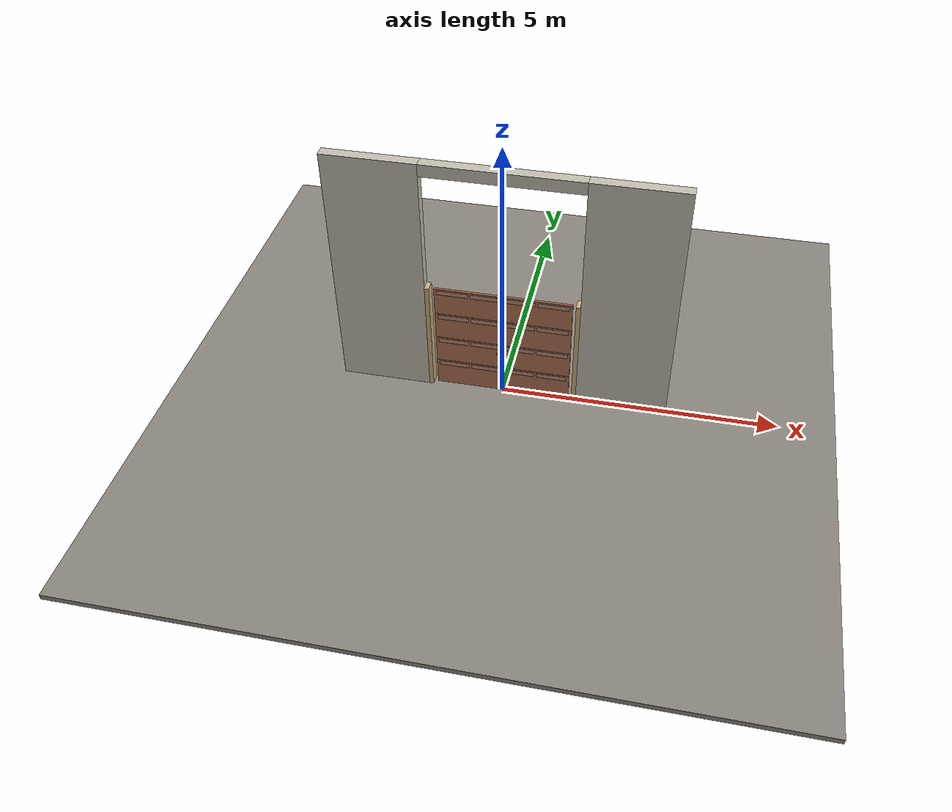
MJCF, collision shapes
<?xml version="1.0" ?>
<mujoco model="db0433_garage_sectional_minimal">
  <compiler angle="radian" meshdir="../../hardware" texturedir="../../textures" autolimits="true" inertiafromgeom="false"/>
  <option timestep="0.002" integrator="implicitfast" cone="elliptic" impratio="10" noslip_iterations="3">
    <flag multiccd="enable"/>
  </option>
  <size memory="16M"/>
  <default>
    <geom condim="4" solref="0.005 1" solimp="0.95 0.99 0.001"/>
    <joint solreflimit="0.005 1" solimplimit="0.95 0.99 0.001"/>
    <tendon solreflimit="0.005 1"/>
    <equality solref="0.002 1"/>
  </default>
  <visual>
    <headlight ambient="0.4 0.4 0.4" diffuse="0.7 0.7 0.7" specular="0.2 0.2 0.2"/>
    <quality shadowsize="4096"/>
    <map znear="0.01" zfar="60"/>
  </visual>
  <asset>
    <mesh name="pull_bdc5e965ab" file="pull_bdc5e965ab.obj"/>
    <material name="mat_floor" rgba="0.55 0.53 0.5 1" specular="0.2" shininess="0.15" reflectance="0"/>
    <material name="mat_wall" rgba="0.78 0.76 0.7 1" specular="0.2" shininess="0.1" reflectance="0"/>
    <material name="mat_frame" rgba="0.82 0.7 0.5 1" specular="0.2" shininess="0.45" reflectance="0"/>
    <material name="mat_track" rgba="0.65 0.66 0.68 1" specular="0.74" shininess="0.5" reflectance="0.36"/>
    <material name="mat_section_0" rgba="0.7 0.45 0.32 1" specular="0.2" shininess="0.4" reflectance="0"/>
    <material name="mat_glass" rgba="0.85 0.92 0.95 0.25" specular="0.2" shininess="0.95" reflectance="0.1"/>
    <material name="mat_section_1" rgba="0.7 0.45 0.32 1" specular="0.2" shininess="0.4" reflectance="0"/>
    <material name="mat_hinge_line" rgba="0.2 0.2 0.2 1" specular="0.2" shininess="0.3" reflectance="0"/>
    <material name="mat_section_2" rgba="0.7 0.45 0.32 1" specular="0.2" shininess="0.4" reflectance="0"/>
    <material name="mat_section_3" rgba="0.7 0.45 0.32 1" specular="0.2" shininess="0.4" reflectance="0"/>
    <material name="mat_spring" rgba="0.55 0.56 0.58 1" specular="0.8" shininess="0.55" reflectance="0.4"/>
    <material name="mat_opener" rgba="0.05 0.05 0.05 1" specular="0.38" shininess="0.3" reflectance="0.12"/>
    <material name="mat_op_black_matte_metal" rgba="0.05 0.05 0.05 1" specular="0.38" shininess="0.3" reflectance="0.12"/>
    <material name="mat_slidelock" rgba="0.65 0.66 0.68 1" specular="0.74" shininess="0.5" reflectance="0.36"/>
    <texture name="skybox" type="skybox" builtin="gradient" rgb1="0.6 0.7 0.85" rgb2="0.9 0.92 0.95" width="256" height="256"/>
  </asset>
  <worldbody>
    <light name="sun" pos="1.5 -2.5 4" dir="-0.3 0.5 -0.8" directional="true" diffuse="0.8 0.8 0.8" specular="0.3 0.3 0.3" castshadow="true"/>
    <light name="fill" pos="-1.5 2.5 3" dir="0.3 -0.5 -0.7" directional="true" diffuse="0.35 0.35 0.4" castshadow="false"/>
    <camera name="robot_view" pos="0 -2.959375 1.918625" xyaxes="1 0 0 0 0.26963 0.962964" fovy="52"/>
    <camera name="far_view" pos="0 2.959375 1.918625" xyaxes="-1 0 0 0 -0.26963 0.962964" fovy="52"/>
    <camera name="iso" pos="2.249125 -2.485875 2.392125" xyaxes="0.741536 0.670913 0 -0.242917 0.268487 0.932151" fovy="46"/>
    <camera name="detail_handle" pos="0.25 -1.1725 1.25" xyaxes="0.975133 0.221621 0 -0.065674 0.288965 0.955084" fovy="38"/>
    <geom name="floor" type="box" size="6 6 0.05" pos="0 0 -0.05" material="mat_floor" group="0" contype="1" conaffinity="1" friction="0.8 0.005 0.0001" density="2400"/>
    <geom name="wall_left" type="box" size="0.8175 0.1 2.305" pos="-2.1825 0 2.305" material="mat_wall" group="0" contype="1" conaffinity="1" friction="0.6 0.005 0.0001" density="800"/>
    <geom name="wall_right" type="box" size="0.8175 0.1 2.305" pos="2.1825 0 2.305" material="mat_wall" group="0" contype="1" conaffinity="1" friction="0.6 0.005 0.0001" density="800"/>
    <geom name="wall_header" type="box" size="1.365 0.1 0.11" pos="0 0 4.5" material="mat_wall" group="0" contype="1" conaffinity="1" friction="0.6 0.005 0.0001" density="800"/>
    <geom name="garage_jamb_l" type="box" size="0.04 0.1 1.09" pos="-1.325 0 1.09" material="mat_frame" group="0" contype="1" conaffinity="1" friction="0.6 0.005 0.0001" density="400"/>
    <geom name="garage_jamb_r" type="box" size="0.04 0.1 1.09" pos="1.325 0 1.09" material="mat_frame" group="0" contype="1" conaffinity="1" friction="0.6 0.005 0.0001" density="400"/>
    <site name="approach_point" pos="0 -2 0" quat="1 0 0 0" size="0.05" rgba="0.2 0.9 0.2 0.5" group="4"/>
    <site name="goal_point" pos="0 2 0" quat="1 0 0 0" size="0.05" rgba="0.2 0.9 0.2 0.5" group="4"/>
    <site name="door_plane_center" pos="0 0 1.09" quat="1 0 0 0" size="0.02" rgba="0.2 0.9 0.2 0.5" group="4"/>
    <body name="door" pos="0 0 0">
      <inertial pos="0 0 1.072825" mass="79.93599" quat="0.707107 0.707107 0 0" diaginertia="29.880737702 39.167918265 69.013212332"/>
      <joint name="door_slide" type="slide" axis="0 0 1" limited="true" range="0 2.08" damping="6.004164" frictionloss="31.41395" stiffness="96.313627" springref="6.933333" armature="0.5"/>
      <geom name="section_0_slab" type="box" size="1.22 0.0225 0.26625" pos="0 0 0.27625" material="mat_section_0" group="0" contype="1" conaffinity="1" friction="0.35 0.005 0.0001" density="1"/>
      <geom name="section_0_glass_0" type="box" size="0.2775 0.0233 0.0426" pos="-0.8925 0 0.46795" material="mat_glass" group="1" contype="0" conaffinity="0" density="1"/>
      <geom name="section_0_glass_1" type="box" size="0.2775 0.0233 0.0426" pos="-0.2975 0 0.46795" material="mat_glass" group="1" contype="0" conaffinity="0" density="1"/>
      <geom name="section_0_glass_2" type="box" size="0.2775 0.0233 0.0426" pos="0.2975 0 0.46795" material="mat_glass" group="1" contype="0" conaffinity="0" density="1"/>
      <geom name="section_0_glass_3" type="box" size="0.2775 0.0233 0.0426" pos="0.8925 0 0.46795" material="mat_glass" group="1" contype="0" conaffinity="0" density="1"/>
      <geom name="section_1_slab" type="box" size="1.22 0.0225 0.26625" pos="0 0 0.80875" material="mat_section_1" group="0" contype="1" conaffinity="1" friction="0.35 0.005 0.0001" density="1"/>
      <geom name="section_1_glass_0" type="box" size="0.2775 0.0233 0.0426" pos="-0.8925 0 1.00045" material="mat_glass" group="1" contype="0" conaffinity="0" density="1"/>
      <geom name="section_1_glass_1" type="box" size="0.2775 0.0233 0.0426" pos="-0.2975 0 1.00045" material="mat_glass" group="1" contype="0" conaffinity="0" density="1"/>
      <geom name="section_1_glass_2" type="box" size="0.2775 0.0233 0.0426" pos="0.2975 0 1.00045" material="mat_glass" group="1" contype="0" conaffinity="0" density="1"/>
      <geom name="section_1_glass_3" type="box" size="0.2775 0.0233 0.0426" pos="0.8925 0 1.00045" material="mat_glass" group="1" contype="0" conaffinity="0" density="1"/>
      <geom name="section_2_slab" type="box" size="1.22 0.0225 0.26625" pos="0 0 1.34125" material="mat_section_2" group="0" contype="1" conaffinity="1" friction="0.35 0.005 0.0001" density="1"/>
      <geom name="section_2_glass_0" type="box" size="0.2775 0.0233 0.0426" pos="-0.8925 0 1.53295" material="mat_glass" group="1" contype="0" conaffinity="0" density="1"/>
      <geom name="section_2_glass_1" type="box" size="0.2775 0.0233 0.0426" pos="-0.2975 0 1.53295" material="mat_glass" group="1" contype="0" conaffinity="0" density="1"/>
      <geom name="section_2_glass_2" type="box" size="0.2775 0.0233 0.0426" pos="0.2975 0 1.53295" material="mat_glass" group="1" contype="0" conaffinity="0" density="1"/>
      <geom name="section_2_glass_3" type="box" size="0.2775 0.0233 0.0426" pos="0.8925 0 1.53295" material="mat_glass" group="1" contype="0" conaffinity="0" density="1"/>
      <geom name="section_3_slab" type="box" size="1.22 0.0225 0.26625" pos="0 0 1.87375" material="mat_section_3" group="0" contype="1" conaffinity="1" friction="0.35 0.005 0.0001" density="1"/>
      <geom name="section_3_glass_0" type="box" size="0.2775 0.0233 0.0426" pos="-0.8925 0 2.06545" material="mat_glass" group="1" contype="0" conaffinity="0" density="1"/>
      <geom name="section_3_glass_1" type="box" size="0.2775 0.0233 0.0426" pos="-0.2975 0 2.06545" material="mat_glass" group="1" contype="0" conaffinity="0" density="1"/>
      <geom name="section_3_glass_2" type="box" size="0.2775 0.0233 0.0426" pos="0.2975 0 2.06545" material="mat_glass" group="1" contype="0" conaffinity="0" density="1"/>
      <geom name="section_3_glass_3" type="box" size="0.2775 0.0233 0.0426" pos="0.8925 0 2.06545" material="mat_glass" group="1" contype="0" conaffinity="0" density="1"/>
      <geom name="lift_handle_n" type="mesh" mesh="pull_bdc5e965ab" pos="0 -0.0225 0.9" quat="0.707107 0.707107 0 0" material="mat_op_black_matte_metal" group="1" contype="0" conaffinity="0" density="3000"/>
      <geom name="lift_handle_col_n" type="box" size="0.1 0.006 0.015" pos="0 -0.0725 0.9" material="mat_op_black_matte_metal" group="3" contype="1" conaffinity="1" rgba="0.8 0.3 0.3 0.25" friction="0.6 0.005 0.0001" density="3000"/>
      <geom name="lift_handle_p" type="mesh" mesh="pull_bdc5e965ab" pos="0 0.0225 0.9" quat="-0.707107 0.707107 0 0" material="mat_op_black_matte_metal" group="1" contype="0" conaffinity="0" density="3000"/>
      <geom name="lift_handle_col_p" type="box" size="0.1 0.006 0.015" pos="0 0.0725 0.9" material="mat_op_black_matte_metal" group="3" contype="1" conaffinity="1" rgba="0.8 0.3 0.3 0.25" friction="0.6 0.005 0.0001" density="3000"/>
      <site name="lift_handle_grip_n" pos="0 -0.0725 0.9" quat="1 0 0 0" size="0.012" rgba="0.2 0.9 0.2 0.5" group="4"/>
      <site name="lift_handle_grip_p" pos="0 0.0725 0.9" quat="1 0 0 0" size="0.012" rgba="0.2 0.9 0.2 0.5" group="4"/>
    </body>
  </worldbody>
  <sensor>
    <jointpos name="door_slide_pos" joint="door_slide"/>
    <jointvel name="door_slide_vel" joint="door_slide"/>
  </sensor>
</mujoco>
